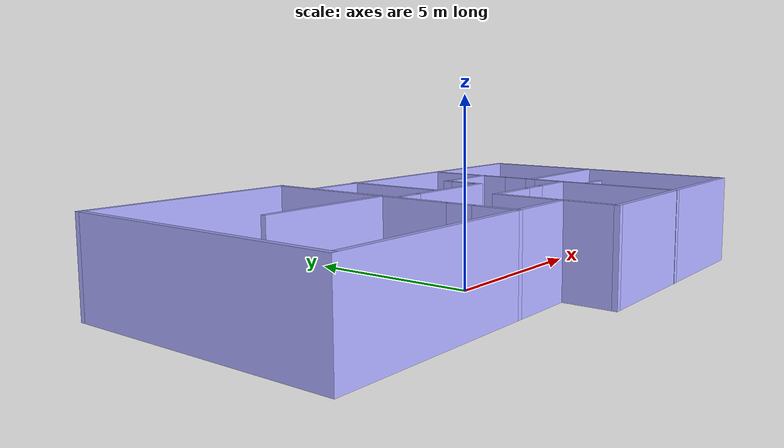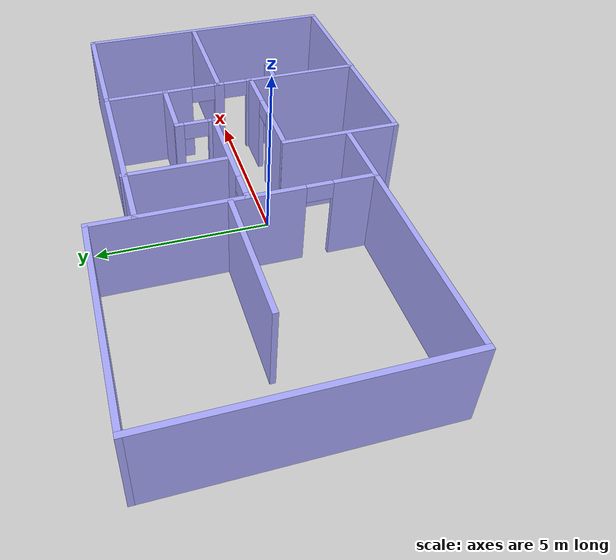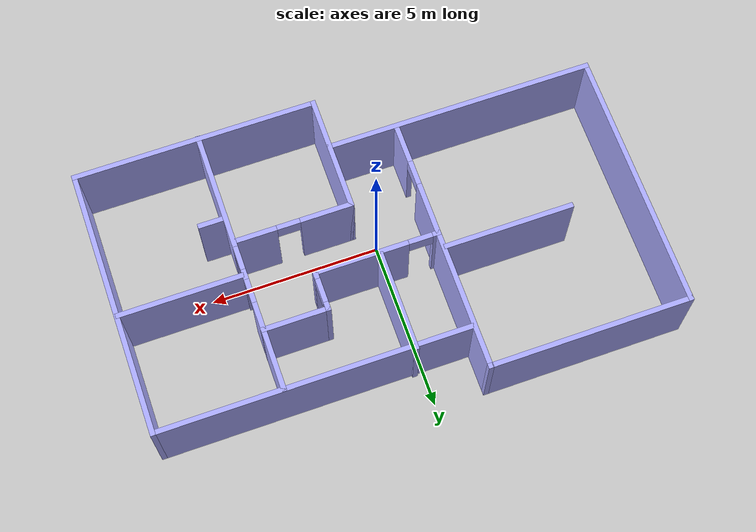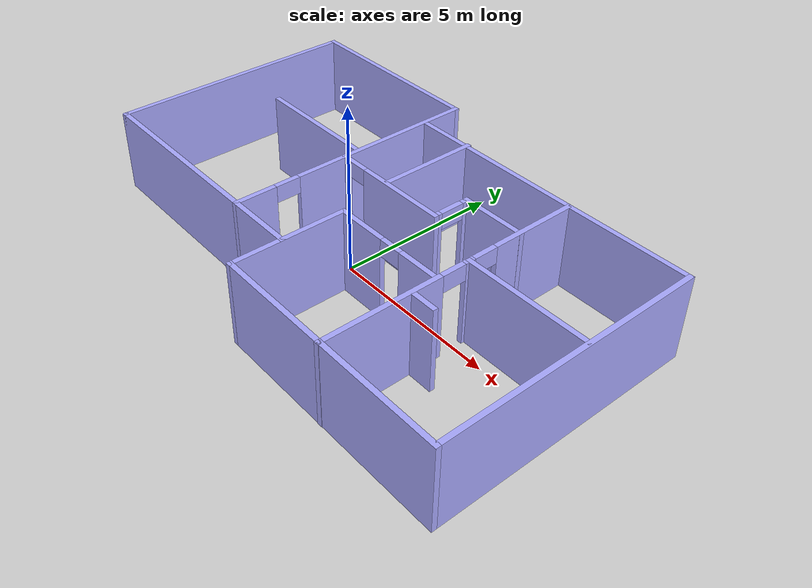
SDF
<?xml version='1.0'?>
<sdf version='1.6'>
  <model name='building'>
    <pose frame=''>0.158324 0.58124 0 0 -0 0</pose>
    <link name='Wall_43'>
      <collision name='Wall_43_Collision'>
        <geometry>
          <box>
            <size>7.75 0.15 2.5</size>
          </box>
        </geometry>
        <pose frame=''>0 0 1.25 0 -0 0</pose>
      </collision>
      <visual name='Wall_43_Visual'>
        <pose frame=''>0 0 1.25 0 -0 0</pose>
        <geometry>
          <box>
            <size>7.75 0.15 2.5</size>
          </box>
        </geometry>
        <material>
          <script>
            <uri>file://media/materials/scripts/gazebo.material</uri>
            <name>Gazebo/Grey</name>
          </script>
          <ambient>0.666667 0.666667 1 1</ambient>
        </material>
        <meta>
          <layer>0</layer>
        </meta>
      </visual>
      <pose frame=''>-7.47602 0.737961 0 0 0 -1.5708</pose>
    </link>
    <link name='Wall_45'>
      <pose frame=''>-1.62602 0.737961 0 0 -0 1.5708</pose>
      <visual name='Wall_45_Visual_0'>
        <pose frame=''>-3.24057 0 1.25 0 -0 0</pose>
        <geometry>
          <box>
            <size>1.26887 0.15 2.5</size>
          </box>
        </geometry>
        <material>
          <script>
            <uri>file://media/materials/scripts/gazebo.material</uri>
            <name>Gazebo/Grey</name>
          </script>
          <ambient>0.666667 0.666667 1 1</ambient>
        </material>
        <meta>
          <layer>0</layer>
        </meta>
      </visual>
      <collision name='Wall_45_Collision_0'>
        <geometry>
          <box>
            <size>1.26887 0.15 2.5</size>
          </box>
        </geometry>
        <pose frame=''>-3.24057 0 1.25 0 -0 0</pose>
      </collision>
      <visual name='Wall_45_Visual_1'>
        <pose frame=''>1.00348 0 1.25 0 -0 0</pose>
        <geometry>
          <box>
            <size>5.74305 0.15 2.5</size>
          </box>
        </geometry>
        <material>
          <script>
            <uri>file://media/materials/scripts/gazebo.material</uri>
            <name>Gazebo/Grey</name>
          </script>
          <ambient>0.666667 0.666667 1 1</ambient>
        </material>
        <meta>
          <layer>0</layer>
        </meta>
      </visual>
      <collision name='Wall_45_Collision_1'>
        <geometry>
          <box>
            <size>5.74305 0.15 2.5</size>
          </box>
        </geometry>
        <pose frame=''>1.00348 0 1.25 0 -0 0</pose>
      </collision>
      <visual name='Wall_45_Visual_2'>
        <pose frame=''>-2.23709 0 2.25 0 -0 0</pose>
        <geometry>
          <box>
            <size>0.738086 0.15 0.5</size>
          </box>
        </geometry>
        <material>
          <script>
            <uri>file://media/materials/scripts/gazebo.material</uri>
            <name>Gazebo/Grey</name>
          </script>
          <ambient>0.666667 0.666667 1 1</ambient>
        </material>
        <meta>
          <layer>0</layer>
        </meta>
      </visual>
      <collision name='Wall_45_Collision_2'>
        <geometry>
          <box>
            <size>0.738086 0.15 0.5</size>
          </box>
        </geometry>
        <pose frame=''>-2.23709 0 2.25 0 -0 0</pose>
      </collision>
    </link>
    <link name='Wall_46'>
      <collision name='Wall_46_Collision'>
        <geometry>
          <box>
            <size>6 0.15 2.5</size>
          </box>
        </geometry>
        <pose frame=''>0 0 1.25 0 -0 0</pose>
      </collision>
      <visual name='Wall_46_Visual'>
        <pose frame=''>0 0 1.25 0 -0 0</pose>
        <geometry>
          <box>
            <size>6 0.15 2.5</size>
          </box>
        </geometry>
        <material>
          <script>
            <uri>file://media/materials/scripts/gazebo.material</uri>
            <name>Gazebo/Grey</name>
          </script>
          <ambient>0.666667 0.666667 1 1</ambient>
        </material>
        <meta>
          <layer>0</layer>
        </meta>
      </visual>
      <pose frame=''>-4.55102 4.53796 0 0 -0 3.14159</pose>
    </link>
    <link name='Wall_49'>
      <collision name='Wall_49_Collision'>
        <geometry>
          <box>
            <size>3.85 0.15 2.5</size>
          </box>
        </geometry>
        <pose frame=''>0 0 1.25 0 -0 0</pose>
      </collision>
      <visual name='Wall_49_Visual'>
        <pose frame=''>0 0 1.25 0 -0 0</pose>
        <geometry>
          <box>
            <size>3.85 0.15 2.5</size>
          </box>
        </geometry>
        <material>
          <script>
            <uri>file://media/materials/scripts/gazebo.material</uri>
            <name>Gazebo/Grey</name>
          </script>
          <ambient>0.666667 0.666667 1 1</ambient>
        </material>
        <meta>
          <layer>0</layer>
        </meta>
      </visual>
      <pose frame=''>-3.55632 0.89476 0 0 -0 0</pose>
    </link>
    <link name='Wall_51'>
      <collision name='Wall_51_Collision'>
        <geometry>
          <box>
            <size>9.25 0.15 2.5</size>
          </box>
        </geometry>
        <pose frame=''>0 0 1.25 0 -0 0</pose>
      </collision>
      <visual name='Wall_51_Visual'>
        <pose frame=''>0 0 1.25 0 -0 0</pose>
        <geometry>
          <box>
            <size>9.25 0.15 2.5</size>
          </box>
        </geometry>
        <material>
          <script>
            <uri>file://media/materials/scripts/gazebo.material</uri>
            <name>Gazebo/Grey</name>
          </script>
          <ambient>0.666667 0.666667 1 1</ambient>
        </material>
        <meta>
          <layer>0</layer>
        </meta>
      </visual>
      <pose frame=''>2.92602 3.3236 0 0 -0 0</pose>
    </link>
    <link name='Wall_52'>
      <collision name='Wall_52_Collision'>
        <geometry>
          <box>
            <size>8 0.15 2.5</size>
          </box>
        </geometry>
        <pose frame=''>0 0 1.25 0 -0 0</pose>
      </collision>
      <visual name='Wall_52_Visual'>
        <pose frame=''>0 0 1.25 0 -0 0</pose>
        <geometry>
          <box>
            <size>8 0.15 2.5</size>
          </box>
        </geometry>
        <material>
          <script>
            <uri>file://media/materials/scripts/gazebo.material</uri>
            <name>Gazebo/Grey</name>
          </script>
          <ambient>0.666667 0.666667 1 1</ambient>
        </material>
        <meta>
          <layer>0</layer>
        </meta>
      </visual>
      <pose frame=''>7.47602 -0.601396 0 0 0 -1.5708</pose>
    </link>
    <link name='Wall_53'>
      <collision name='Wall_53_Collision'>
        <geometry>
          <box>
            <size>7.25 0.15 2.5</size>
          </box>
        </geometry>
        <pose frame=''>0 0 1.25 0 -0 0</pose>
      </collision>
      <visual name='Wall_53_Visual'>
        <pose frame=''>0 0 1.25 0 -0 0</pose>
        <geometry>
          <box>
            <size>7.25 0.15 2.5</size>
          </box>
        </geometry>
        <material>
          <script>
            <uri>file://media/materials/scripts/gazebo.material</uri>
            <name>Gazebo/Grey</name>
          </script>
          <ambient>0.666667 0.666667 1 1</ambient>
        </material>
        <meta>
          <layer>0</layer>
        </meta>
      </visual>
      <pose frame=''>3.92602 -4.5264 0 0 -0 3.14159</pose>
    </link>
    <link name='Wall_54'>
      <collision name='Wall_54_Collision'>
        <geometry>
          <box>
            <size>3.5 0.15 2.5</size>
          </box>
        </geometry>
        <pose frame=''>0 0 1.25 0 -0 0</pose>
      </collision>
      <visual name='Wall_54_Visual'>
        <pose frame=''>0 0 1.25 0 -0 0</pose>
        <geometry>
          <box>
            <size>3.5 0.15 2.5</size>
          </box>
        </geometry>
        <material>
          <script>
            <uri>file://media/materials/scripts/gazebo.material</uri>
            <name>Gazebo/Grey</name>
          </script>
          <ambient>0.666667 0.666667 1 1</ambient>
        </material>
        <meta>
          <layer>0</layer>
        </meta>
      </visual>
      <pose frame=''>0.376022 -2.8514 0 0 -0 1.5708</pose>
    </link>
    <link name='Wall_55'>
      <pose frame=''>2.05102 -1.1764 0 0 -0 0</pose>
      <visual name='Wall_55_Visual_0'>
        <pose frame=''>-0.956942 0 1.25 0 -0 0</pose>
        <geometry>
          <box>
            <size>1.58612 0.15 2.5</size>
          </box>
        </geometry>
        <material>
          <script>
            <uri>file://media/materials/scripts/gazebo.material</uri>
            <name>Gazebo/Grey</name>
          </script>
          <ambient>0.666667 0.666667 1 1</ambient>
        </material>
        <meta>
          <layer>0</layer>
        </meta>
      </visual>
      <collision name='Wall_55_Collision_0'>
        <geometry>
          <box>
            <size>1.58612 0.15 2.5</size>
          </box>
        </geometry>
        <pose frame=''>-0.956942 0 1.25 0 -0 0</pose>
      </collision>
      <visual name='Wall_55_Visual_1'>
        <pose frame=''>1.13319 0 1.25 0 -0 0</pose>
        <geometry>
          <box>
            <size>1.23362 0.15 2.5</size>
          </box>
        </geometry>
        <material>
          <script>
            <uri>file://media/materials/scripts/gazebo.material</uri>
            <name>Gazebo/Grey</name>
          </script>
          <ambient>0.666667 0.666667 1 1</ambient>
        </material>
        <meta>
          <layer>0</layer>
        </meta>
      </visual>
      <collision name='Wall_55_Collision_1'>
        <geometry>
          <box>
            <size>1.23362 0.15 2.5</size>
          </box>
        </geometry>
        <pose frame=''>1.13319 0 1.25 0 -0 0</pose>
      </collision>
      <visual name='Wall_55_Visual_2'>
        <pose frame=''>0.176246 0 2.25 0 -0 0</pose>
        <geometry>
          <box>
            <size>0.680259 0.15 0.5</size>
          </box>
        </geometry>
        <material>
          <script>
            <uri>file://media/materials/scripts/gazebo.material</uri>
            <name>Gazebo/Grey</name>
          </script>
          <ambient>0.666667 0.666667 1 1</ambient>
        </material>
        <meta>
          <layer>0</layer>
        </meta>
      </visual>
      <collision name='Wall_55_Collision_2'>
        <geometry>
          <box>
            <size>0.680259 0.15 0.5</size>
          </box>
        </geometry>
        <pose frame=''>0.176246 0 2.25 0 -0 0</pose>
      </collision>
    </link>
    <link name='Wall_57'>
      <collision name='Wall_57_Collision'>
        <geometry>
          <box>
            <size>8 0.15 2.5</size>
          </box>
        </geometry>
        <pose frame=''>0 0 1.25 0 -0 0</pose>
      </collision>
      <visual name='Wall_57_Visual'>
        <pose frame=''>0 0 1.25 0 -0 0</pose>
        <geometry>
          <box>
            <size>8 0.15 2.5</size>
          </box>
        </geometry>
        <material>
          <script>
            <uri>file://media/materials/scripts/gazebo.material</uri>
            <name>Gazebo/Grey</name>
          </script>
          <ambient>0.666667 0.666667 1 1</ambient>
        </material>
        <meta>
          <layer>0</layer>
        </meta>
      </visual>
      <pose frame=''>-3.55102 -3.06204 0 0 -0 0</pose>
    </link>
    <link name='Wall_59'>
      <pose frame=''>3.82328 -0.612961 0 0 0 -1.5708</pose>
      <visual name='Wall_59_Visual_0'>
        <pose frame=''>-2.66377 0 1.25 0 -0 0</pose>
        <geometry>
          <box>
            <size>2.67246 0.15 2.5</size>
          </box>
        </geometry>
        <material>
          <script>
            <uri>file://media/materials/scripts/gazebo.material</uri>
            <name>Gazebo/Grey</name>
          </script>
          <ambient>0.666667 0.666667 1 1</ambient>
        </material>
        <meta>
          <layer>0</layer>
        </meta>
      </visual>
      <collision name='Wall_59_Collision_0'>
        <geometry>
          <box>
            <size>2.67246 0.15 2.5</size>
          </box>
        </geometry>
        <pose frame=''>-2.66377 0 1.25 0 -0 0</pose>
      </collision>
      <visual name='Wall_59_Visual_1'>
        <pose frame=''>-0.4583 0 1.25 0 -0 0</pose>
        <geometry>
          <box>
            <size>0.308574 0.15 2.5</size>
          </box>
        </geometry>
        <material>
          <script>
            <uri>file://media/materials/scripts/gazebo.material</uri>
            <name>Gazebo/Grey</name>
          </script>
          <ambient>0.666667 0.666667 1 1</ambient>
        </material>
        <meta>
          <layer>0</layer>
        </meta>
      </visual>
      <collision name='Wall_59_Collision_1'>
        <geometry>
          <box>
            <size>0.308574 0.15 2.5</size>
          </box>
        </geometry>
        <pose frame=''>-0.4583 0 1.25 0 -0 0</pose>
      </collision>
      <visual name='Wall_59_Visual_2'>
        <pose frame=''>2.20547 0 1.25 0 -0 0</pose>
        <geometry>
          <box>
            <size>3.58906 0.15 2.5</size>
          </box>
        </geometry>
        <material>
          <script>
            <uri>file://media/materials/scripts/gazebo.material</uri>
            <name>Gazebo/Grey</name>
          </script>
          <ambient>0.666667 0.666667 1 1</ambient>
        </material>
        <meta>
          <layer>0</layer>
        </meta>
      </visual>
      <collision name='Wall_59_Collision_2'>
        <geometry>
          <box>
            <size>3.58906 0.15 2.5</size>
          </box>
        </geometry>
        <pose frame=''>2.20547 0 1.25 0 -0 0</pose>
      </collision>
      <visual name='Wall_59_Visual_3'>
        <pose frame=''>-0.970065 0 2.25 0 -0 0</pose>
        <geometry>
          <box>
            <size>0.714955 0.15 0.5</size>
          </box>
        </geometry>
        <material>
          <script>
            <uri>file://media/materials/scripts/gazebo.material</uri>
            <name>Gazebo/Grey</name>
          </script>
          <ambient>0.666667 0.666667 1 1</ambient>
        </material>
        <meta>
          <layer>0</layer>
        </meta>
      </visual>
      <collision name='Wall_59_Collision_3'>
        <geometry>
          <box>
            <size>0.714955 0.15 0.5</size>
          </box>
        </geometry>
        <pose frame=''>-0.970065 0 2.25 0 -0 0</pose>
      </collision>
      <visual name='Wall_59_Visual_4'>
        <pose frame=''>0.053465 0 2.25 0 -0 0</pose>
        <geometry>
          <box>
            <size>0.714955 0.15 0.5</size>
          </box>
        </geometry>
        <material>
          <script>
            <uri>file://media/materials/scripts/gazebo.material</uri>
            <name>Gazebo/Grey</name>
          </script>
          <ambient>0.666667 0.666667 1 1</ambient>
        </material>
        <meta>
          <layer>0</layer>
        </meta>
      </visual>
      <collision name='Wall_59_Collision_4'>
        <geometry>
          <box>
            <size>0.714955 0.15 0.5</size>
          </box>
        </geometry>
        <pose frame=''>0.053465 0 2.25 0 -0 0</pose>
      </collision>
    </link>
    <link name='Wall_61'>
      <collision name='Wall_61_Collision'>
        <geometry>
          <box>
            <size>0.75 0.15 2.5</size>
          </box>
        </geometry>
        <pose frame=''>0 0 1.25 0 -0 0</pose>
      </collision>
      <visual name='Wall_61_Visual'>
        <pose frame=''>0 0 1.25 0 -0 0</pose>
        <geometry>
          <box>
            <size>0.75 0.15 2.5</size>
          </box>
        </geometry>
        <material>
          <script>
            <uri>file://media/materials/scripts/gazebo.material</uri>
            <name>Gazebo/Grey</name>
          </script>
          <ambient>0.666667 0.666667 1 1</ambient>
        </material>
        <meta>
          <layer>0</layer>
        </meta>
      </visual>
      <pose frame=''>4.25189 -1.93861 0 0 -0 3.14159</pose>
    </link>
    <link name='Wall_63'>
      <pose frame=''>0.176022 0.443843 0 0 -0 0</pose>
      <visual name='Wall_63_Visual_0'>
        <pose frame=''>-1.75313 0 1.25 0 -0 0</pose>
        <geometry>
          <box>
            <size>0.243744 0.15 2.5</size>
          </box>
        </geometry>
        <material>
          <script>
            <uri>file://media/materials/scripts/gazebo.material</uri>
            <name>Gazebo/Grey</name>
          </script>
          <ambient>0.666667 0.666667 1 1</ambient>
        </material>
        <meta>
          <layer>0</layer>
        </meta>
      </visual>
      <collision name='Wall_63_Collision_0'>
        <geometry>
          <box>
            <size>0.243744 0.15 2.5</size>
          </box>
        </geometry>
        <pose frame=''>-1.75313 0 1.25 0 -0 0</pose>
      </collision>
      <visual name='Wall_63_Visual_1'>
        <pose frame=''>0.473567 0 1.25 0 -0 0</pose>
        <geometry>
          <box>
            <size>2.80287 0.15 2.5</size>
          </box>
        </geometry>
        <material>
          <script>
            <uri>file://media/materials/scripts/gazebo.material</uri>
            <name>Gazebo/Grey</name>
          </script>
          <ambient>0.666667 0.666667 1 1</ambient>
        </material>
        <meta>
          <layer>0</layer>
        </meta>
      </visual>
      <collision name='Wall_63_Collision_1'>
        <geometry>
          <box>
            <size>2.80287 0.15 2.5</size>
          </box>
        </geometry>
        <pose frame=''>0.473567 0 1.25 0 -0 0</pose>
      </collision>
      <visual name='Wall_63_Visual_2'>
        <pose frame=''>-1.27956 0 2.25 0 -0 0</pose>
        <geometry>
          <box>
            <size>0.70339 0.15 0.5</size>
          </box>
        </geometry>
        <material>
          <script>
            <uri>file://media/materials/scripts/gazebo.material</uri>
            <name>Gazebo/Grey</name>
          </script>
          <ambient>0.666667 0.666667 1 1</ambient>
        </material>
        <meta>
          <layer>0</layer>
        </meta>
      </visual>
      <collision name='Wall_63_Collision_2'>
        <geometry>
          <box>
            <size>0.70339 0.15 0.5</size>
          </box>
        </geometry>
        <pose frame=''>-1.27956 0 2.25 0 -0 0</pose>
      </collision>
    </link>
    <link name='Wall_64'>
      <pose frame=''>1.97602 0.993844 0 0 -0 1.5708</pose>
      <visual name='Wall_64_Visual_0'>
        <pose frame=''>-0.494454 0 1.25 0 -0 0</pose>
        <geometry>
          <box>
            <size>0.261092 0.15 2.5</size>
          </box>
        </geometry>
        <material>
          <script>
            <uri>file://media/materials/scripts/gazebo.material</uri>
            <name>Gazebo/Grey</name>
          </script>
          <ambient>0.666667 0.666667 1 1</ambient>
        </material>
        <meta>
          <layer>0</layer>
        </meta>
      </visual>
      <collision name='Wall_64_Collision_0'>
        <geometry>
          <box>
            <size>0.261092 0.15 2.5</size>
          </box>
        </geometry>
        <pose frame=''>-0.494454 0 1.25 0 -0 0</pose>
      </collision>
      <visual name='Wall_64_Visual_1'>
        <pose frame=''>0.488023 0 1.25 0 -0 0</pose>
        <geometry>
          <box>
            <size>0.273953 0.15 2.5</size>
          </box>
        </geometry>
        <material>
          <script>
            <uri>file://media/materials/scripts/gazebo.material</uri>
            <name>Gazebo/Grey</name>
          </script>
          <ambient>0.666667 0.666667 1 1</ambient>
        </material>
        <meta>
          <layer>0</layer>
        </meta>
      </visual>
      <collision name='Wall_64_Collision_1'>
        <geometry>
          <box>
            <size>0.273953 0.15 2.5</size>
          </box>
        </geometry>
        <pose frame=''>0.488023 0 1.25 0 -0 0</pose>
      </collision>
      <visual name='Wall_64_Visual_2'>
        <pose frame=''>-0.006431 0 2.25 0 -0 0</pose>
        <geometry>
          <box>
            <size>0.714955 0.15 0.5</size>
          </box>
        </geometry>
        <material>
          <script>
            <uri>file://media/materials/scripts/gazebo.material</uri>
            <name>Gazebo/Grey</name>
          </script>
          <ambient>0.666667 0.666667 1 1</ambient>
        </material>
        <meta>
          <layer>0</layer>
        </meta>
      </visual>
      <collision name='Wall_64_Collision_2'>
        <geometry>
          <box>
            <size>0.714955 0.15 0.5</size>
          </box>
        </geometry>
        <pose frame=''>-0.006431 0 2.25 0 -0 0</pose>
      </collision>
    </link>
    <link name='Wall_65'>
      <collision name='Wall_65_Collision'>
        <geometry>
          <box>
            <size>2 0.15 2.5</size>
          </box>
        </geometry>
        <pose frame=''>0 0 1.25 0 -0 0</pose>
      </collision>
      <visual name='Wall_65_Visual'>
        <pose frame=''>0 0 1.25 0 -0 0</pose>
        <geometry>
          <box>
            <size>2 0.15 2.5</size>
          </box>
        </geometry>
        <material>
          <script>
            <uri>file://media/materials/scripts/gazebo.material</uri>
            <name>Gazebo/Grey</name>
          </script>
          <ambient>0.666667 0.666667 1 1</ambient>
        </material>
        <meta>
          <layer>0</layer>
        </meta>
      </visual>
      <pose frame=''>2.90102 1.54384 0 0 -0 0</pose>
    </link>
    <link name='Wall_67'>
      <collision name='Wall_67_Collision'>
        <geometry>
          <box>
            <size>3 0.15 2.5</size>
          </box>
        </geometry>
        <pose frame=''>0 0 1.25 0 -0 0</pose>
      </collision>
      <visual name='Wall_67_Visual'>
        <pose frame=''>0 0 1.25 0 -0 0</pose>
        <geometry>
          <box>
            <size>3 0.15 2.5</size>
          </box>
        </geometry>
        <material>
          <script>
            <uri>file://media/materials/scripts/gazebo.material</uri>
            <name>Gazebo/Grey</name>
          </script>
          <ambient>0.666667 0.666667 1 1</ambient>
        </material>
        <meta>
          <layer>0</layer>
        </meta>
      </visual>
      <pose frame=''>0.087687 1.95643 0 0 0 -1.5708</pose>
    </link>
    <link name='Wall_69'>
      <collision name='Wall_69_Collision'>
        <geometry>
          <box>
            <size>3.75 0.15 2.5</size>
          </box>
        </geometry>
        <pose frame=''>0 0 1.25 0 -0 0</pose>
      </collision>
      <visual name='Wall_69_Visual'>
        <pose frame=''>0 0 1.25 0 -0 0</pose>
        <geometry>
          <box>
            <size>3.75 0.15 2.5</size>
          </box>
        </geometry>
        <material>
          <script>
            <uri>file://media/materials/scripts/gazebo.material</uri>
            <name>Gazebo/Grey</name>
          </script>
          <ambient>0.666667 0.666667 1 1</ambient>
        </material>
        <meta>
          <layer>0</layer>
        </meta>
      </visual>
      <pose frame=''>5.63485 -0.145987 0 0 -0 0</pose>
    </link>
    <static>1</static>
  </model>
</sdf>
